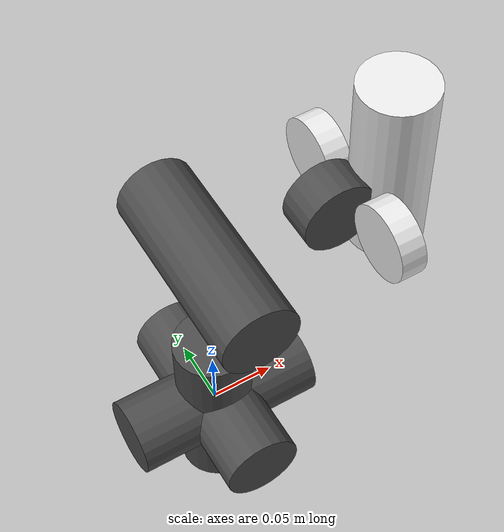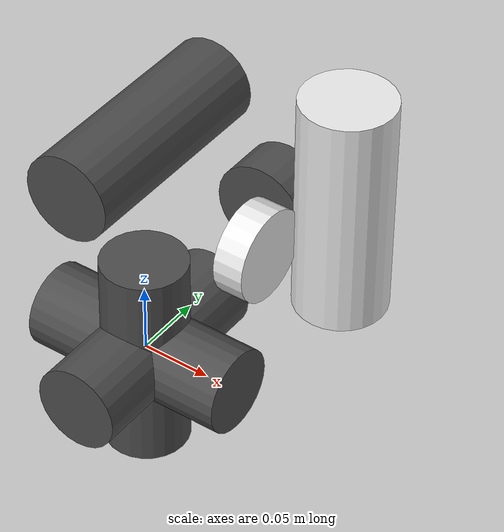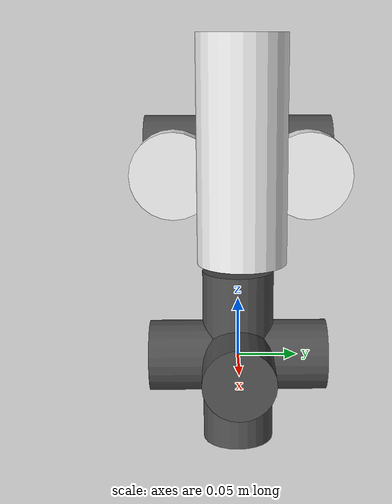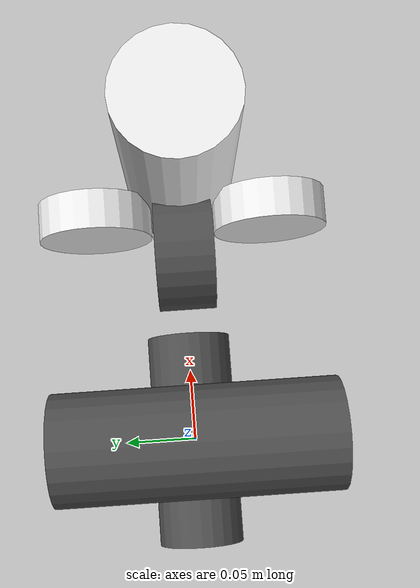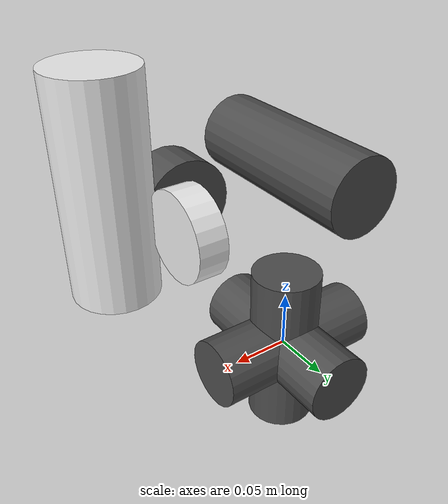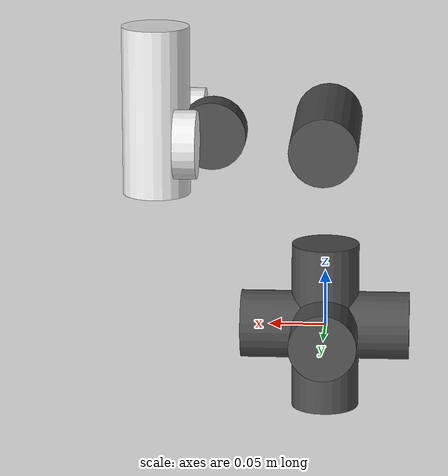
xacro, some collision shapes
<?xml version="1.0"?>
<robot xmlns:xacro="http://www.ros.org/wiki/xacro" name="Eddie">

  <xacro:include filename="$(find kit_head_description)/model/kit_head.urdf.xacro" />

  <link name="world" />

  <xacro:kit_head name="head" parent="world">
    <origin xyz="0.0 0.0 0.0"/>
  </xacro:kit_head>

</robot>

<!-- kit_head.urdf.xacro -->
<robot xmlns:xacro="http://www.ros.org/wiki/xacro">

  <xacro:include filename="$(find kit_head_description)/model/materials.urdf"/>

  <xacro:property name="M_PI" value="3.1415926535897931" />
  <xacro:property name="velocity_scale_factor" value="1.0"/>

  <xacro:macro name="kit_head" params="parent name *origin">

    <!-- The base of the hand, fixed to its parent. -->
    <joint name="${parent}_${name}_base_joint" type="fixed">
      <insert_block name="origin"/>
      <parent link="${parent}"/>
      <child link="calib_${name}_base_link"/>
    </joint>

    <link name="calib_${name}_base_link" />

    <!-- neck -->
    <joint name="${name}_neck_pitch_joint" type="revolute">
      <origin xyz="0 0 0" rpy="${-1*M_PI/2} 0 0"/>
      <axis xyz="0 0 1"/>
      <limit lower="${-33 * M_PI / 180}" upper="${33 * M_PI / 180}"
             effort="204" velocity="${velocity_scale_factor * 180 * M_PI / 180}" />
      <safety_controller soft_lower_limit="${-33 * M_PI / 180}"
                         soft_upper_limit="${33 * M_PI / 180}"
                         k_position="30"
                         k_velocity="30"/>
      <dynamics damping="1.0"/>
      <parent link="calib_${name}_base_link"/>
      <child link="${name}_head_1_link"/>
    </joint>

    <link name="${name}_head_1_link">
      <visual>
        <origin xyz="0 0 0" rpy="0 0 0"/>
        <geometry>
          <cylinder radius="0.03" length="0.15"/>
        </geometry>
        <material name="KIT/DarkGrey"/>
      </visual>
      <collision>
        <origin xyz="0 0 0" rpy="0 0 0"/>
        <geometry>
          <cylinder radius="0.03" length="0.15"/>
        </geometry>
      </collision>
    </link>

    <joint name="${name}_neck_roll_joint" type="revolute">
      <origin xyz="0 0 0" rpy="0 ${M_PI/2} 0"/>
      <axis xyz="0 0 1"/>
      <limit lower="${-28 * M_PI / 180}" upper="${28 * M_PI / 180}"
             effort="204" velocity="${velocity_scale_factor * 180 * M_PI / 180}" />
      <safety_controller soft_lower_limit="${-28 * M_PI / 180}"
                         soft_upper_limit="${28 * M_PI / 180}"
                         k_position="30"
                         k_velocity="30"/>
      <dynamics damping="1.0"/>
      <parent link="${name}_head_1_link"/>
      <child link="${name}_head_2_link"/>
    </joint>

    <link name="${name}_head_2_link">
      <visual>
        <origin xyz="0 0 0" rpy="0 0 0"/>
        <geometry>
          <cylinder radius="0.03" length="0.15"/>
        </geometry>
        <material name="KIT/DarkGrey"/>
      </visual>
      <collision>
        <origin xyz="0 0 0" rpy="0 0 0"/>
        <geometry>
          <cylinder radius="0.03" length="0.15"/>
        </geometry>
      </collision>
    </link>

    <joint name="${name}_neck_yaw_joint" type="revolute">
      <origin xyz="0 0 0" rpy="${-1*M_PI/2} ${-1*M_PI/2} 0"/>
      <axis xyz="0 0 1"/>
      <limit lower="${-114 * M_PI / 180}" upper="${114 * M_PI / 180}"
             effort="204" velocity="${velocity_scale_factor * 180 * M_PI / 180}" />
      <safety_controller soft_lower_limit="${-114 * M_PI / 180}"
                         soft_upper_limit="${114 * M_PI / 180}"
                         k_position="30"
                         k_velocity="30"/>
      <dynamics damping="1.0"/>
      <parent link="${name}_head_2_link"/>
      <child link="${name}_head_3_link"/>
    </joint>

    <link name="${name}_head_3_link">
      <visual>
        <origin xyz="0 0 0" rpy="0 0 0"/>
        <geometry>
          <cylinder radius="0.03" length="0.15"/>
        </geometry>
        <material name="KIT/DarkGrey"/>
      </visual>
      <collision>
        <origin xyz="0 0 0" rpy="0 0 0"/>
        <geometry>
          <cylinder radius="0.03" length="0.15"/>
        </geometry>
      </collision>
    </link>

    <joint name="${name}_head_tilt_joint" type="revolute">
      <origin xyz="0 0 -0.1745" rpy="${M_PI/2} 0 0"/>
      <axis xyz="0 0 1"/>
      <limit lower="${-40 * M_PI / 180}" upper="${40 * M_PI / 180}"
             effort="204" velocity="${velocity_scale_factor * 180 * M_PI / 180}" />
      <safety_controller soft_lower_limit="${-40 * M_PI / 180}"
                         soft_upper_limit="${40 * M_PI / 180}"
                         k_position="30"
                         k_velocity="30"/>
      <dynamics damping="1.0"/>
      <parent link="${name}_head_3_link"/>
      <child link="${name}_head_4_link"/>
    </joint>

    <link name="${name}_head_4_link">
      <visual>
        <origin xyz="0 0 0" rpy="0 0 0"/>
        <geometry>
          <cylinder radius="0.03" length="0.15"/>
        </geometry>
        <material name="KIT/DarkGrey"/>
      </visual>
      <collision>
        <origin xyz="0 0 0" rpy="0 0 0"/>
        <geometry>
          <cylinder radius="0.03" length="0.15"/>
        </geometry>
      </collision>
    </link>

    <joint name="${name}_eyes_tilt_joint" type="revolute">
      <origin xyz="0.1 0 0" rpy="0 0 0"/>
      <axis xyz="0 0 1"/>
      <limit lower="${-20 * M_PI / 180}" upper="${20 * M_PI / 180}"
             effort="204" velocity="${velocity_scale_factor * 180 * M_PI / 180}" />
      <safety_controller soft_lower_limit="${-20 * M_PI / 180}"
                         soft_upper_limit="${20 * M_PI / 180}"
                         k_position="30"
                         k_velocity="30"/>
      <dynamics damping="1.0"/>
      <parent link="${name}_head_4_link"/>
      <child link="${name}_head_5_link"/>
    </joint>

    <link name="${name}_head_5_link">
      <visual>
        <origin xyz="0 0 0" rpy="0 0 0"/>
        <geometry>
          <cylinder radius="0.03" length="0.03"/>
        </geometry>
        <material name="KIT/DarkGrey"/>
      </visual>
      <collision>
        <origin xyz="0 0.18 0" rpy="${M_PI/2} 0 0"/>
        <geometry>
          <cylinder radius="0.15" length="0.4"/>s
        </geometry>
      </collision>
    </link>

    <joint name="${name}_left_eye_joint" type="revolute">
      <origin xyz="0 0 0.0465" rpy="${M_PI/2} 0 0"/>
      <axis xyz="0 0 1"/>
      <limit lower="${-20 * M_PI / 180}" upper="${20 * M_PI / 180}"
             effort="204" velocity="${velocity_scale_factor * 180 * M_PI / 180}" />
      <safety_controller soft_lower_limit="${-20 * M_PI / 180}"
                         soft_upper_limit="${20 * M_PI / 180}"
                         k_position="30"
                         k_velocity="30"/>
      <dynamics damping="1.0"/>
      <parent link="${name}_head_5_link"/>
      <child link="${name}_left_eye_link"/>
    </joint>

    <link name="${name}_left_eye_link">
      <visual>
        <origin xyz="0.02 0 0" rpy="0 ${M_PI/2} 0"/>
        <geometry>
          <cylinder radius="0.03" length="0.02"/>
        </geometry>
        <material name="KIT/White"/>
      </visual>
      <collision>
        <origin xyz="0.02 0 0" rpy="0 0 0"/>
        <geometry>
          <cylinder radius="0.03" length="0.02"/>
        </geometry>
      </collision>
    </link>

    <joint name="${name}_right_eye_joint" type="revolute">
      <origin xyz="0 0 -0.0465" rpy="${M_PI/2} 0 0"/>
      <axis xyz="0 0 1"/>
      <limit lower="${-20 * M_PI / 180}" upper="${20 * M_PI / 180}"
             effort="204" velocity="${velocity_scale_factor * 180 * M_PI / 180}" />
      <safety_controller soft_lower_limit="${-20 * M_PI / 180}"
                         soft_upper_limit="${20 * M_PI / 180}"
                         k_position="30"
                         k_velocity="30"/>
      <dynamics damping="1.0"/>
      <parent link="${name}_head_5_link"/>
      <child link="${name}_right_eye_link"/>
    </joint>

    <link name="${name}_right_eye_link">
      <visual>
        <origin xyz="0.02 0 0" rpy="0 ${M_PI/2} 0"/>
        <geometry>
          <cylinder radius="0.03" length="0.02"/>
        </geometry>
        <material name="KIT/White"/>
      </visual>
      <collision>
        <origin xyz="0.02 0 0" rpy="0 0 0"/>
        <geometry>
          <cylinder radius="0.03" length="0.02"/>
        </geometry>
      </collision>
    </link>

    <joint name="${name}_face_joint" type="fixed">
      <origin xyz="0.05 -0.02 0" rpy="-1.57 2.356194 0.0" />
      <parent link="${name}_head_5_link"/>
      <child link="${name}_face_link"/>
    </joint>

    <link name="${name}_face_link">
      <visual>
        <origin xyz="0 0 0" rpy="0 0 0"/>
        <geometry>
          <mesh filename="package://kit_head_description/meshes/inmoov_face.stl"/>
        </geometry>
        <material name="KIT/White"/>
      </visual>
      <collision>
        <origin xyz="0 0 0" rpy="0 0 0"/>
        <geometry>
          <cylinder radius="0.03" length="0.15"/>
        </geometry>
      </collision>
    </link>

  </xacro:macro>

</robot>
